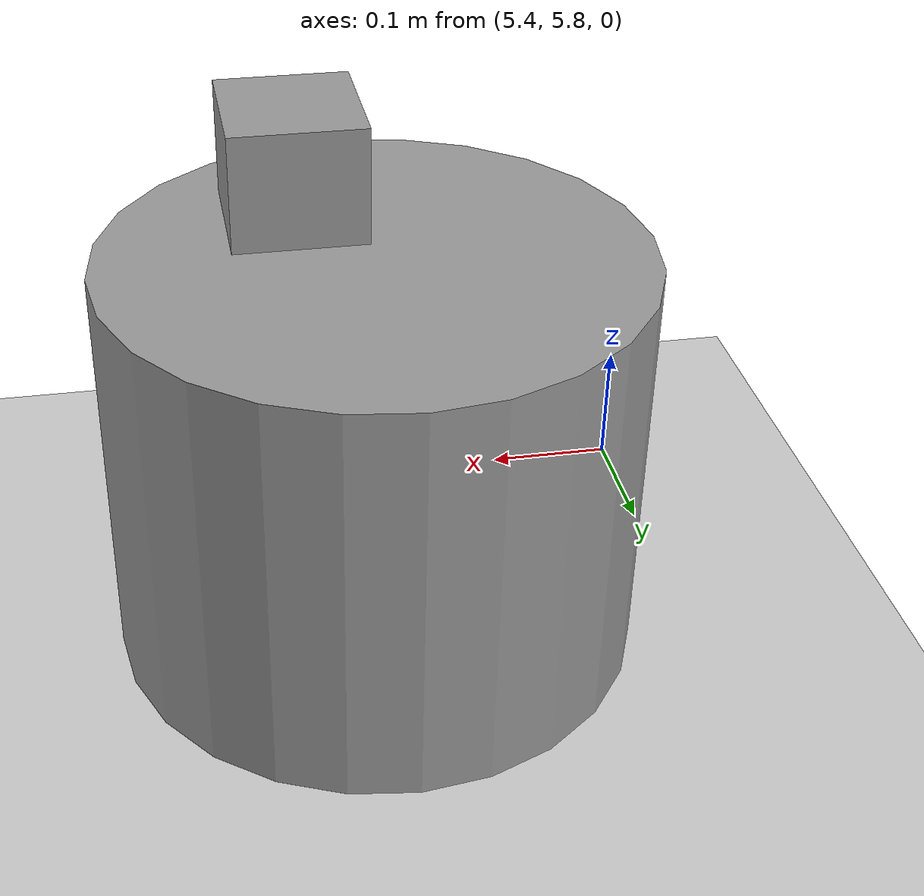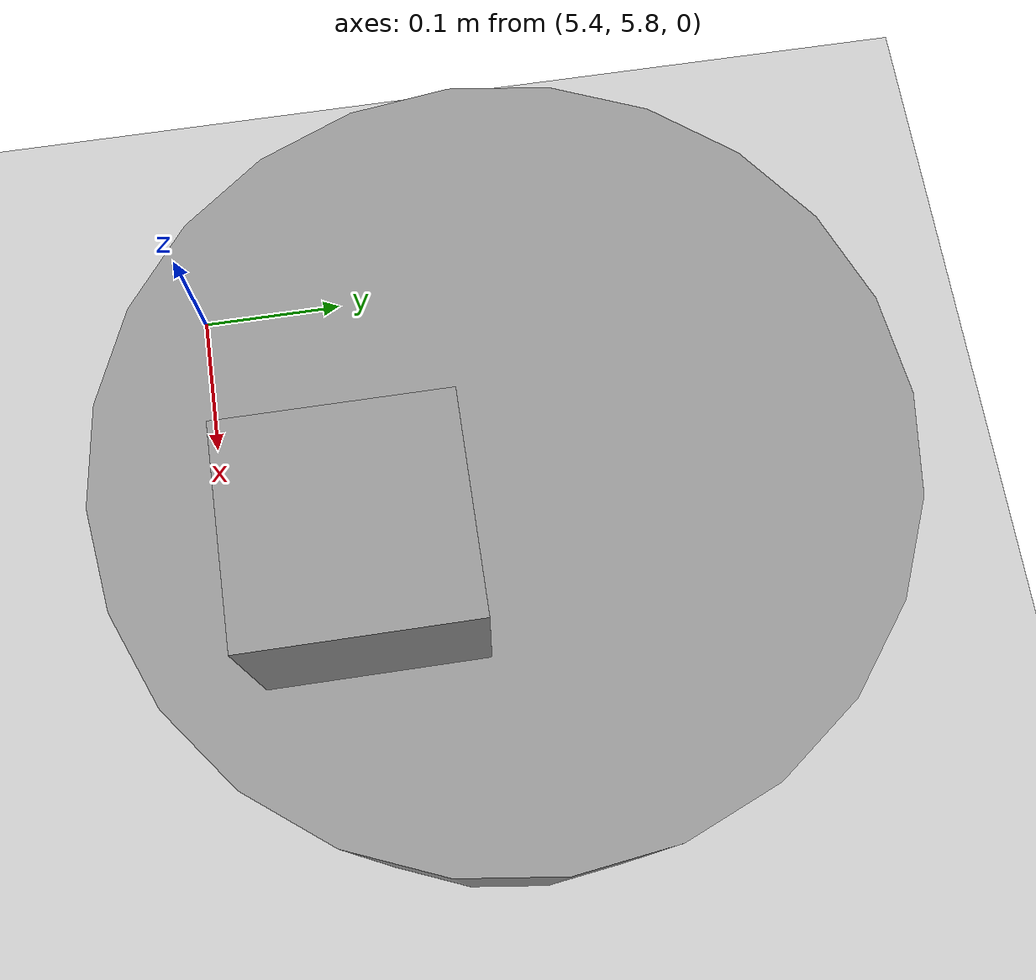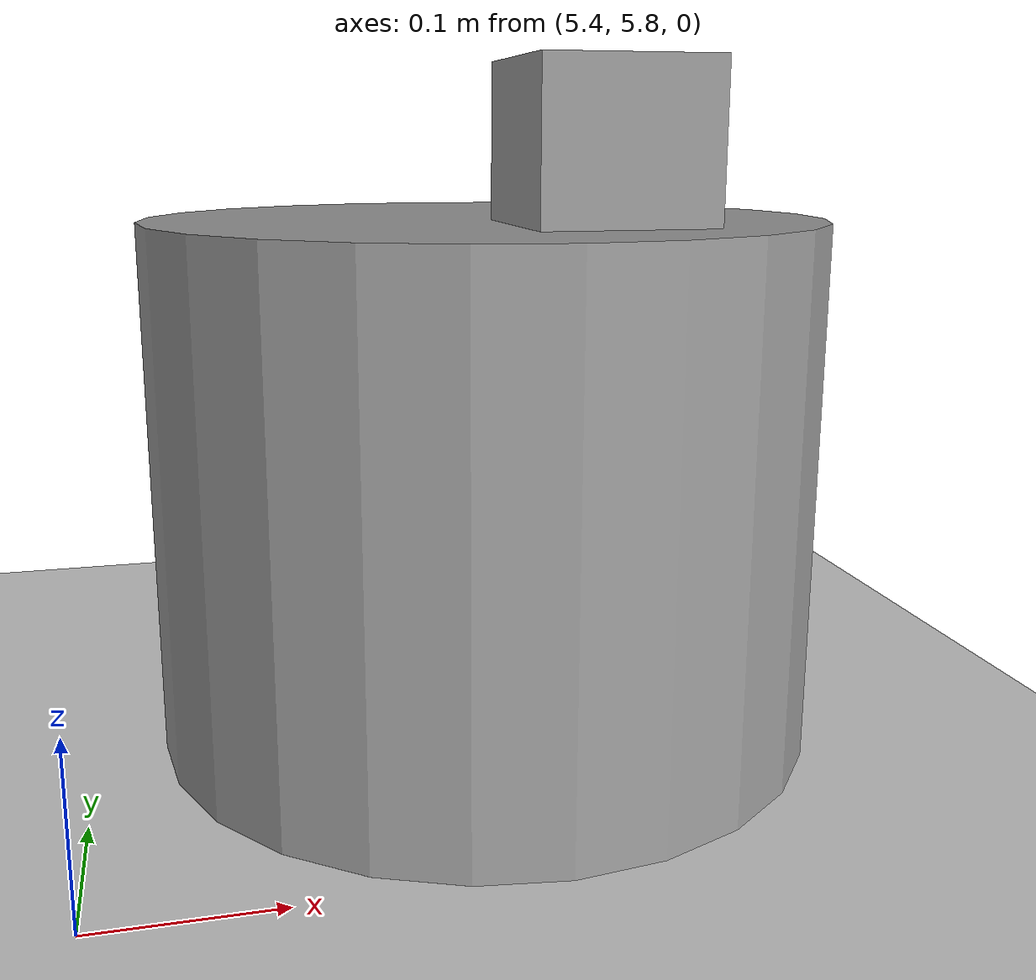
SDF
<sdf version="1.7">
 <world name="default">
  <gravity>0 0 -9.8</gravity>
  <light name="sun" type="directional">
   <pose>0 0 10 0 -0 0</pose>
   <diffuse>0.8 0.8 0.8 1</diffuse>
   <specular>0.2 0.2 0.2 1</specular>
   <attenuation>
    <range>1000</range>
    <constant>0.9</constant>
    <linear>0.01</linear>
    <quadratic>0.001</quadratic>
   </attenuation>
   <direction>-0.5 0.1 -0.9</direction>
   <spot><inner_angle>0</inner_angle><outer_angle>0</outer_angle><falloff>0</falloff></spot>
  </light>
  <model name="ground_plane">
   <static>1</static>
   <link name="link">
    <collision name="collision">
     <geometry><plane><normal>0 0 1</normal><size>100 100</size></plane></geometry>
     <surface>
      <contact><collide_bitmask>65535</collide_bitmask></contact>
      <friction><ode><mu>100</mu><mu2>50</mu2></ode></friction>
     </surface>
    </collision>
    <visual name="visual">
     <cast_shadows>0</cast_shadows>
     <geometry><plane><normal>0 0 1</normal><size>100 100</size></plane></geometry>
     <material>
      <script><uri>file://media/materials/scripts/gazebo.material</uri><name>Gazebo/Grey</name></script>
     </material>
    </visual>
   </link>
  </model>
  <magnetic_field>6e-06 2.3e-05 -4.2e-05</magnetic_field>
  <atmosphere type="adiabatic"/>
  <physics type="ode">
   <max_step_size>0.001</max_step_size>
   <real_time_factor>1</real_time_factor>
   <real_time_update_rate>1000</real_time_update_rate>
  </physics>
  <scene><ambient>0.4 0.4 0.4 1</ambient><background>0.7 0.7 0.7 1</background><shadows>1</shadows></scene>
  <spherical_coordinates>
   <surface_model>EARTH_WGS84</surface_model>
   <latitude_deg>0</latitude_deg>
   <longitude_deg>0</longitude_deg>
   <elevation>0</elevation>
   <heading_deg>0</heading_deg>
  </spherical_coordinates>
  <model name="unit_cylinder">
   <pose>5.63935 5.98971 0.157572 3.2e-05 2.5e-05 -0.000175</pose>
   <link name="link">
    <inertial>
     <mass>1</mass>
     <inertia><ixx>0.145833</ixx><ixy>0</ixy><ixz>0</ixz><iyy>0.145833</iyy><iyz>0</iyz><izz>0.125</izz></inertia>
    </inertial>
    <collision name="collision">
     <geometry><cylinder><radius>0.198585</radius><length>0.315282</length></cylinder></geometry>
    </collision>
    <visual name="visual">
     <geometry><cylinder><radius>0.198585</radius><length>0.315282</length></cylinder></geometry>
     <material>
      <script><name>Gazebo/Grey</name><uri>file://media/materials/scripts/gazebo.material</uri></script>
     </material>
    </visual>
   </link>
  </model>
  <model name="unit_box">
   <pose>5.68798 5.91792 0.358525 5.9e-05 2.8e-05 -7e-06</pose>
   <link name="link">
    <inertial>
     <mass>1</mass>
     <inertia>
      <ixx>0.166667</ixx>
      <ixy>0</ixy>
      <ixz>0</ixz>
      <iyy>0.166667</iyy>
      <iyz>0</iyz>
      <izz>0.166667</izz>
     </inertia>
    </inertial>
    <collision name="collision">
     <geometry><box><size>0.0980078 0.10284 0.086683</size></box></geometry>
    </collision>
    <visual name="visual">
     <geometry><box><size>0.0980078 0.10284 0.086683</size></box></geometry>
     <material>
      <script><name>Gazebo/Grey</name><uri>file://media/materials/scripts/gazebo.material</uri></script>
     </material>
    </visual>
   </link>
  </model>
 </world>
</sdf>
